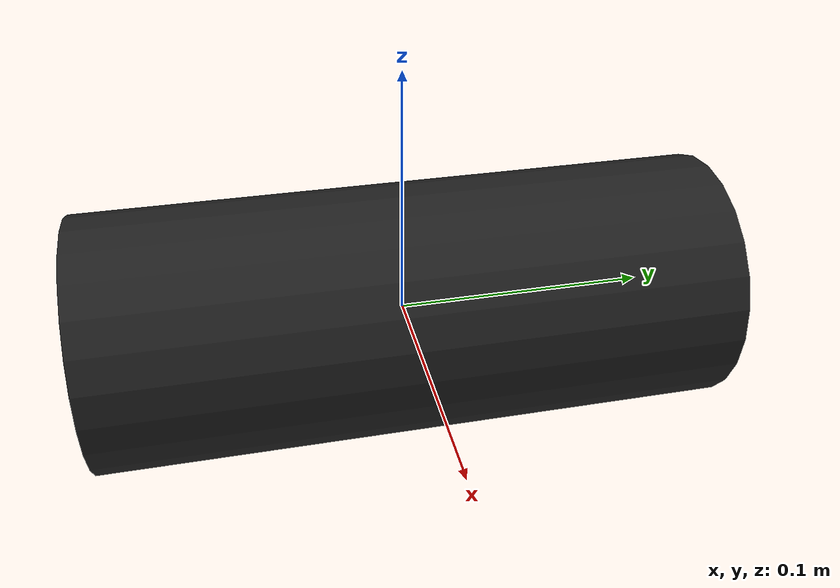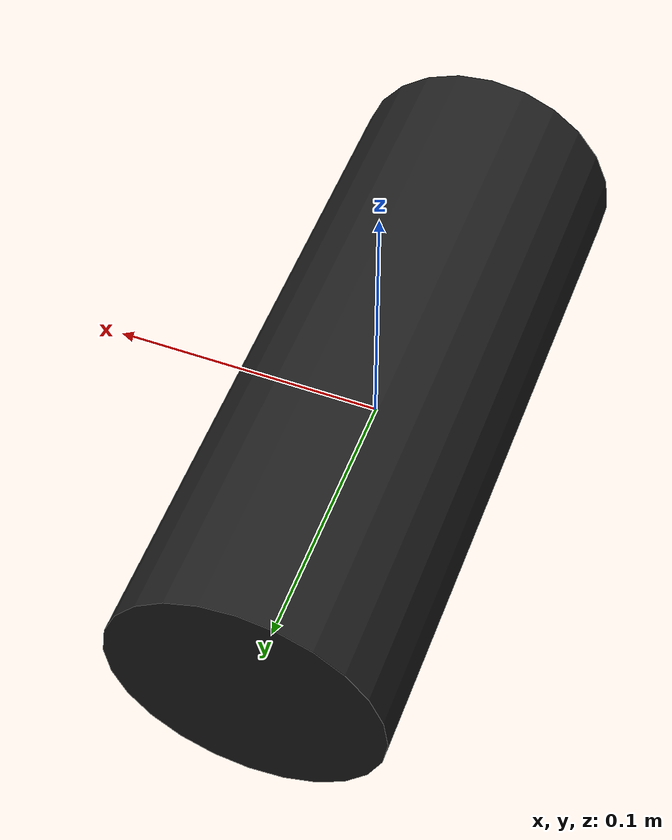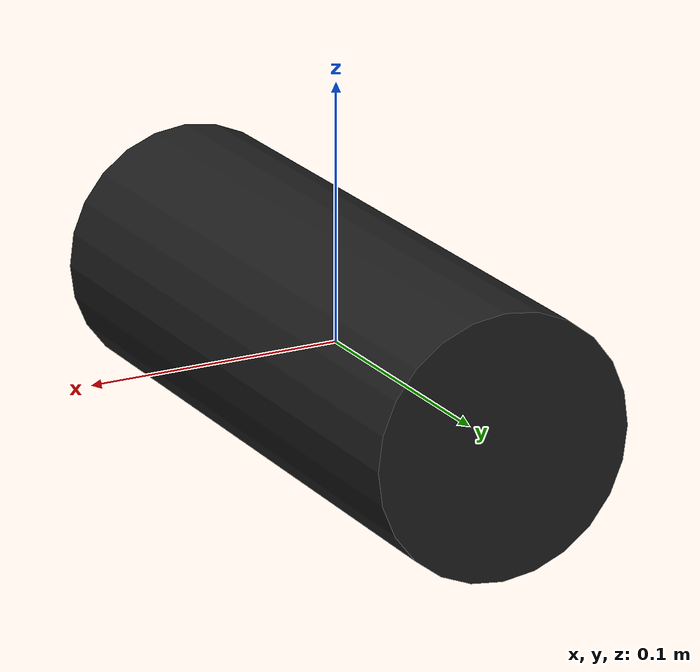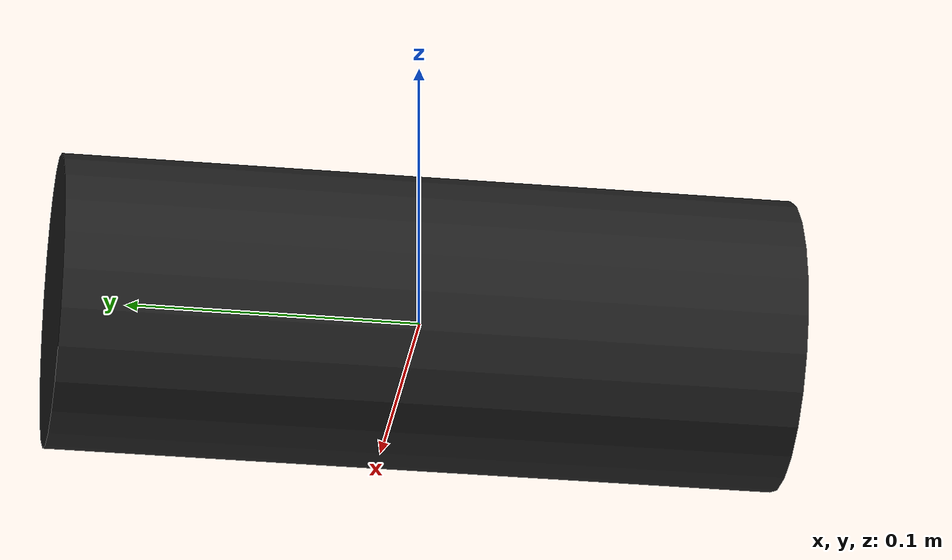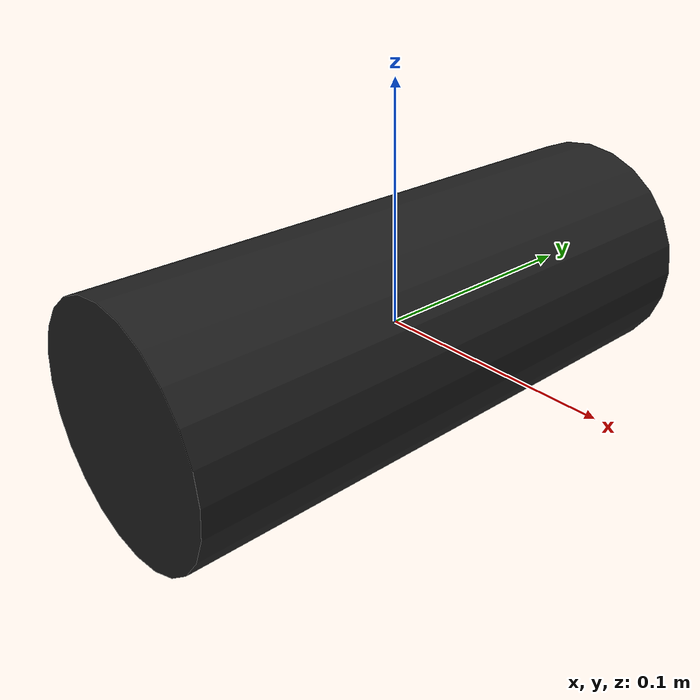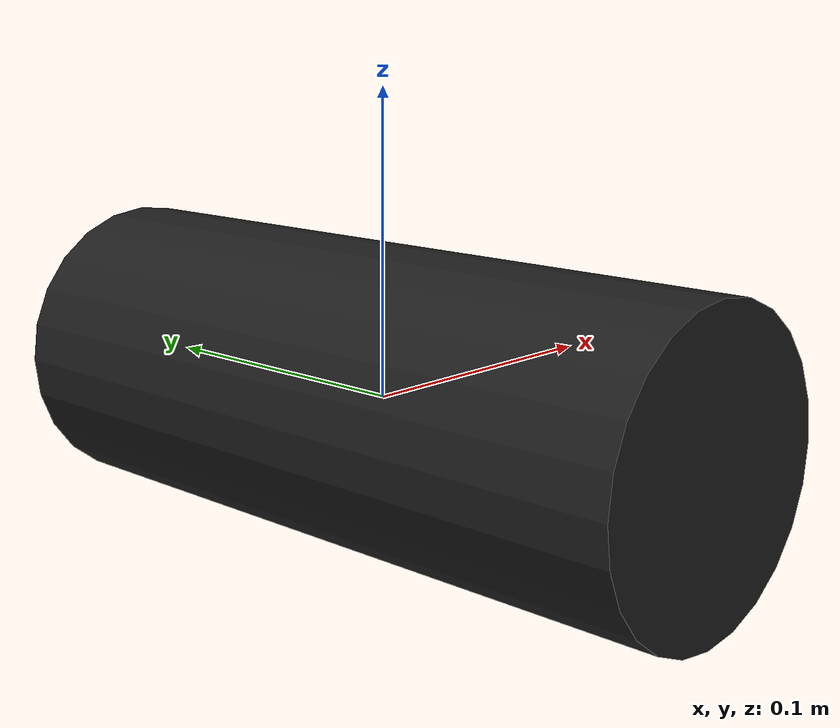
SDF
<?xml version="1.0" ?>
<sdf version="1.5">
    <model name="eo_daylight_cam">
    <static>false</static>

    <link name="eodlcam_phantom_base">
    </link>

    <joint name="eodlcam_phantom_base_to_eodlcam_phantom_aux_mount" type="fixed">
        <parent>eodlcam_phantom_base</parent>
        <child>eodlcam_phantom_aux_mount</child>
    </joint>

    <link name="eodlcam_phantom_aux_mount">
        <pose>0.075 0 0 0 0 0</pose>
    </link>

    <joint name="eodlcam_phantom_base_to_eodlcam_camera_visual" type="fixed">
        <parent>eodlcam_phantom_base</parent>
        <child>eodlcam_camera_visual</child>
    </joint>

    <link name="eodlcam_camera_visual">

        <pose relative_to="eodlcam_phantom_base">
            0 0 0   1.5707 0 0
        </pose>

        <collision name="collision">
            <geometry>
                <cylinder>
                    <radius>0.05</radius>
                    <length>0.25</length>
                </cylinder>
            </geometry>
            <surface>
                <friction>
                <ode>
                    <mu>0.35</mu>
                    <mu>0.55</mu>
                </ode>
                </friction>
            </surface>
        </collision>

        <intertial>
            <mass>5</mass>
        </intertial>

        <visual name="visual-cam">
            <geometry>
                <cylinder>
                    <radius>0.05</radius>
                    <length>0.25</length>
                </cylinder>
            </geometry>
            <material>
                <script>
                    <uri>file://media/materials/scripts/gazebo.material</uri>
                    <name>Gazebo/Black</name>
                </script>
            </material>
        </visual>
    </link>

    <joint name="eodlcam_phantom_base_to_eodlcam_phantom_camera_sensor" type="fixed">
        <parent>eodlcam_phantom_base</parent>
        <child>eodlcam_phantom_camera_sensor</child>
    </joint>

    <link name="eodlcam_phantom_camera_sensor">

        <pose relative_to="eodlcam_phantom_base">
            0 0.1 0   0 0 1.5707
        </pose>

        <sensor type="camera" name="eodlcam_sensor_camera">
            <update_rate>10.0</update_rate>
            <visualize>true</visualize>
            <always_on>1</always_on>

            <camera name="head">
                <horizontal_fov>0.05</horizontal_fov>
                <image>
                    <width>800</width>
                    <height>600</height>
                    <format>R8G8B8</format>
                </image>
                <clip>
                    <near>0.02</near>
                    <far>300</far>
                </clip>
            </camera>
            <plugin name="camera_controller" filename="libgazebo_ros_camera.so">
                <alwaysOn>true</alwaysOn>
                <updateRate>0.0</updateRate>
                <cameraName>payload/eo_cam</cameraName>
                <imageTopicName>image_raw</imageTopicName>
                <cameraInfoTopicName>camera_info</cameraInfoTopicName>
                <frameName>map</frameName>
                <hackBaseline>0.07</hackBaseline>
                <distortionK1>0.0</distortionK1>
                <distortionK2>0.0</distortionK2>
                <distortionK3>0.0</distortionK3>
                <distortionT1>0.0</distortionT1>
                <distortionT2>0.0</distortionT2>
            </plugin>

            <plugin name="cam_controller" filename="libcamera_controller.so">
                <topic_name_pub_status>
                    ptz_status
                </topic_name_pub_status>

                <topic_name_sub_commands>
                    ptz_targets
                </topic_name_sub_commands>

                <publish_rate>1</publish_rate>

            </plugin>

            <plugin name="cam_videofeed" filename="libcamera_video_feed.so">

                <gst_pipeline>
                    appsrc format=GST_FORMAT_TIME name=appsrc emit-signals=True is-live=True block=True caps="video/x-raw,format=RGB,width=800,height=600,framerate=10/1" ! queue ! videoconvert ! x264enc tune=zerolatency ! rtph264pay ! udpsink host=127.0.0.1 port=5000
                </gst_pipeline>

                <image_width>
                    800
                </image_width>

                <image_height>
                    600
                </image_height>

            </plugin>
        </sensor>
    </link>

  </model>
</sdf>
